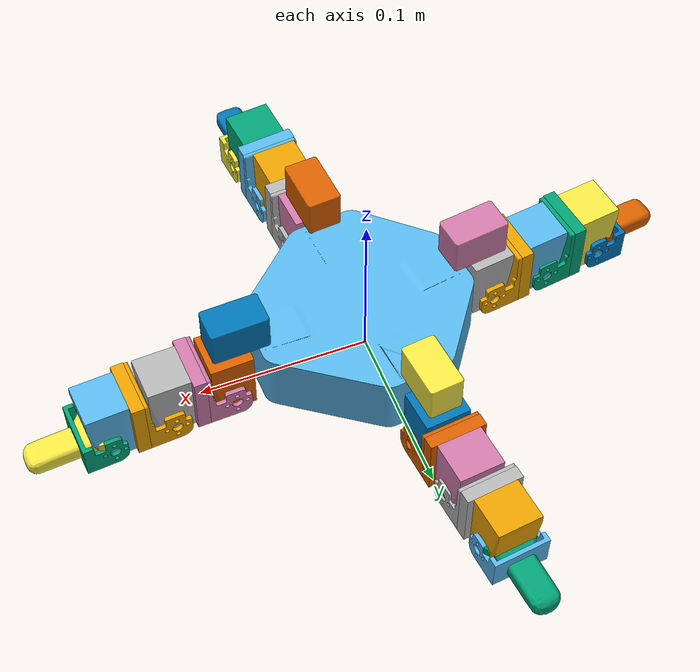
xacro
<?xml version="1.0" encoding="utf-8"?>
<robot xmlns:xacro="http://www.ros.org/wiki/xacro" name="4fingerhand">
  <xacro:include filename="finger1.urdf.xacro"/>
  <xacro:include filename="finger_ghost.urdf.xacro"/>
  <link name="base_link">
    <inertial>
      <origin xyz="0 0 0" rpy="0 0 0"/>
      <mass value="0.5"/>
      <inertia ixx="0.01" ixy="0" ixz="0" iyy="0.01" iyz="0" izz="0.01"/>
    </inertial>
  </link>
  <link name="palm">
    <visual>
      <origin xyz="0 0 0" rpy="0 0 0"/>
      <geometry>
        <mesh filename="robot_meshes/visual/palm_vis.obj"/>
      </geometry>
    </visual>
    <inertial>
      <origin xyz="0 0 0" rpy="0 0 0"/>
      <mass value="0.2"/>
      <inertia ixx="0.001" ixy="0" ixz="0" iyy="0.001" iyz="0" izz="0.001"/>
    </inertial>
    <collision name="palm_collision_0">
      <geometry>
        <mesh filename="meshes/hand_f1_00_f2_70_f3_440_f4_f5_palm_part0.obj"/>
      </geometry>
    </collision>
  </link>
  <joint name="base_to_palm" type="fixed">
    <parent link="base_link"/>
    <child link="palm"/>
    <origin xyz="0 0 0" rpy="0 0 0"/>
  </joint>

  <xacro:finger1 prefix="f1_" parent="palm">
    <origin xyz="0 0 0" rpy="0 0 0"/>
    </xacro:finger1>

    <xacro:finger1 prefix="f2_" parent="palm">
    <origin xyz="0.007864 -0.005870 0.000640" rpy="0 0 -1.635637547063"/>
    </xacro:finger1>

    <xacro:finger1 prefix="f3_" parent="palm">
    <origin xyz="-0.005349 -0.005679 0.000640" rpy="0 0 3.113781730577"/>
    </xacro:finger1>

    <xacro:finger1 prefix="f4_" parent="palm">
    <origin xyz="-0.001870 0.000045 0.000640" rpy="0 0 1.598367033811"/>
    </xacro:finger1>

    <xacro:finger_ghost prefix="f5_" parent="palm">
    <origin xyz="0 0 0" rpy="0 0 0"/>
    </xacro:finger_ghost>

</robot>

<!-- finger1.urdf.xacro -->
<robot xmlns:xacro="http://www.ros.org/wiki/xacro">
  <xacro:macro name="finger1" params="prefix parent *origin">
    <link name="${prefix}finger_root">
      <inertial>
        <mass value="0.001"/>
        <inertia ixx="0.000001" ixy="0" ixz="0" iyy="0.000001" iyz="0" izz="0.000001"/>
      </inertial>
    </link>
    <joint name="${prefix}root_joint" type="fixed">
      <parent link="${parent}"/>
      <child link="${prefix}finger_root"/>
      <xacro:insert_block name="origin"/>
    </joint>
    <link name="${prefix}finger_palm_servo">
      <visual>
        <geometry>
          <mesh filename="robot_meshes/visual/finger_palm_servo_vis.obj"/>
        </geometry>
      </visual>
      <collision>
        <geometry>
          <mesh filename="robot_meshes/finger_palm_servo_part0.obj"/>
        </geometry>
      </collision>
      <inertial>
        <mass value="0.01"/>
        <inertia ixx="0.00001" ixy="0" ixz="0" iyy="0.00001" iyz="0" izz="0.00001"/>
      </inertial>
    </link>
    <joint name="${prefix}palm_servo_joint" type="fixed">
      <parent link="${prefix}finger_root"/>
      <child link="${prefix}finger_palm_servo"/>
      <origin xyz="0.00000 0.00000 0.00000" rpy="0 0 0"/>
    </joint>
    <link name="${prefix}finger_base">
      <visual>
        <origin xyz="0.01210 -0.07583 -0.03747" rpy="0 0 0"/>
        <geometry>
          <mesh filename="robot_meshes/visual/finger_base_vis.obj"/>
        </geometry>
      </visual>
      <collision>
        <origin xyz="0.01210 -0.07583 -0.03747" rpy="0 0 0"/>
        <geometry>
          <mesh filename="robot_meshes/finger_base_servo_part0.obj"/>
        </geometry>
      </collision>
      <inertial>
        <mass value="0.01"/>
        <inertia ixx="0.00001" ixy="0" ixz="0" iyy="0.00001" iyz="0" izz="0.00001"/>
      </inertial>
    </link>
    <joint name="${prefix}finger_palm_joint" type="revolute">
      <parent link="${prefix}finger_palm_servo"/>
      <child link="${prefix}finger_base"/>
      <origin xyz="-0.01210 0.07583 0.03747" rpy="0 0 0"/>
      <axis xyz="0.00000 0.00000 1.00000"/>
      <limit lower="-0.698" upper="0.698" effort="10" velocity="1.0"/>
      <dynamics damping="1.0"/>
    </joint>
    <link name="${prefix}finger_base_lever">
      <visual>
        <origin xyz="0.00032 -0.07716 -0.00489" rpy="0 0 0"/>
        <geometry>
          <mesh filename="robot_meshes/visual/finger_base_lever_vis.obj"/>
        </geometry>
      </visual>
      <collision>
        <origin xyz="0.00032 -0.07716 -0.00489" rpy="0 0 0"/>
        <geometry>
          <mesh filename="robot_meshes/finger_base_lever_part0.obj"/>
        </geometry>
      </collision>
      <collision>
        <origin xyz="0.00032 -0.07716 -0.00489" rpy="0 0 0"/>
        <geometry>
          <mesh filename="robot_meshes/finger_base_lever_part1.obj"/>
        </geometry>
      </collision>
      <collision>
        <origin xyz="0.00032 -0.07716 -0.00489" rpy="0 0 0"/>
        <geometry>
          <mesh filename="robot_meshes/finger_base_lever_part2.obj"/>
        </geometry>
      </collision>
      <visual>
        <origin xyz="0.00032 -0.07716 -0.00489" rpy="0 0 0"/>
        <geometry>
          <mesh filename="robot_meshes/visual/finger_grammar1_vis.obj"/>
        </geometry>
      </visual>
      <collision>
        <origin xyz="0.00032 -0.07716 -0.00489" rpy="0 0 0"/>
        <geometry>
          <mesh filename="robot_meshes/finger_grammar1_part0.obj"/>
        </geometry>
      </collision>
      <inertial>
        <mass value="0.01500"/>
        <inertia ixx="0.00001500" ixy="0" ixz="0" iyy="0.00001500" iyz="0" izz="0.00001500"/>
      </inertial>
    </link>
    <joint name="${prefix}finger_base_joint" type="revolute">
      <parent link="${prefix}finger_base"/>
      <child link="${prefix}finger_base_lever"/>
      <origin xyz="0.01178 0.00133 -0.03258" rpy="0 0 0"/>
      <axis xyz="-0.99238 -0.12319 0.00000"/>
      <limit lower="0.0" upper="1.5708" effort="10" velocity="1.0"/>
      <dynamics damping="1.0"/>
    </joint>
    <link name="${prefix}finger_middle">
      <visual>
        <origin xyz="0.00032 -0.07716 -0.00489" rpy="0 0 0"/>
        <geometry>
          <mesh filename="robot_meshes/visual/finger_middle_vis.obj"/>
        </geometry>
      </visual>
      <collision>
        <origin xyz="0.00032 -0.07716 -0.00489" rpy="0 0 0"/>
        <geometry>
          <mesh filename="robot_meshes/finger_middle_servo_part0.obj"/>
        </geometry>
      </collision>
      <inertial>
        <mass value="0.01"/>
        <inertia ixx="0.00001" ixy="0" ixz="0" iyy="0.00001" iyz="0" izz="0.00001"/>
      </inertial>
    </link>
    <joint name="${prefix}middle_joint" type="fixed">
      <parent link="${prefix}finger_base_lever"/>
      <child link="${prefix}finger_middle"/>
      <origin xyz="0.00000 0.00000 0.00000" rpy="0 0 0"/>
    </joint>
    <link name="${prefix}finger_middle_lever">
      <visual>
        <origin xyz="0.00696 -0.11319 -0.00376" rpy="0 0 0"/>
        <geometry>
          <mesh filename="robot_meshes/visual/finger_middle_lever_vis.obj"/>
        </geometry>
      </visual>
      <collision>
        <origin xyz="0.00696 -0.11319 -0.00376" rpy="0 0 0"/>
        <geometry>
          <mesh filename="robot_meshes/finger_middle_lever_part0.obj"/>
        </geometry>
      </collision>
      <collision>
        <origin xyz="0.00696 -0.11319 -0.00376" rpy="0 0 0"/>
        <geometry>
          <mesh filename="robot_meshes/finger_middle_lever_part1.obj"/>
        </geometry>
      </collision>
      <collision>
        <origin xyz="0.00696 -0.11319 -0.00376" rpy="0 0 0"/>
        <geometry>
          <mesh filename="robot_meshes/finger_middle_lever_part2.obj"/>
        </geometry>
      </collision>
      <visual>
        <origin xyz="0.00696 -0.11319 -0.00376" rpy="0 0 0"/>
        <geometry>
          <mesh filename="robot_meshes/visual/finger_grammar2_vis.obj"/>
        </geometry>
      </visual>
      <collision>
        <origin xyz="0.00696 -0.11319 -0.00376" rpy="0 0 0"/>
        <geometry>
          <mesh filename="robot_meshes/finger_grammar2_part0.obj"/>
        </geometry>
      </collision>
      <inertial>
        <mass value="0.01500"/>
        <inertia ixx="0.00001500" ixy="0" ixz="0" iyy="0.00001500" iyz="0" izz="0.00001500"/>
      </inertial>
    </link>
    <joint name="${prefix}finger_middle_joint" type="revolute">
      <parent link="${prefix}finger_middle"/>
      <child link="${prefix}finger_middle_lever"/>
      <origin xyz="-0.00664 0.03603 -0.00113" rpy="0 0 0"/>
      <axis xyz="-0.99236 -0.12337 0.00000"/>
      <limit lower="0.0" upper="1.5708" effort="10" velocity="1.0"/>
      <dynamics damping="1.0"/>
    </joint>
    <link name="${prefix}finger_end">
      <visual>
        <origin xyz="0.00696 -0.11319 -0.00376" rpy="0 0 0"/>
        <geometry>
          <mesh filename="robot_meshes/visual/finger_end_vis.obj"/>
        </geometry>
      </visual>
      <collision>
        <origin xyz="0.00696 -0.11319 -0.00376" rpy="0 0 0"/>
        <geometry>
          <mesh filename="robot_meshes/finger_end_servo_part0.obj"/>
        </geometry>
      </collision>
      <inertial>
        <mass value="0.01"/>
        <inertia ixx="0.00001" ixy="0" ixz="0" iyy="0.00001" iyz="0" izz="0.00001"/>
      </inertial>
    </link>
    <joint name="${prefix}end_joint" type="fixed">
      <parent link="${prefix}finger_middle_lever"/>
      <child link="${prefix}finger_end"/>
      <origin xyz="0.00000 0.00000 0.00000" rpy="0 0 0"/>
    </joint>
    <link name="${prefix}finger_end_lever">
      <visual>
        <origin xyz="0.00915 -0.14975 -0.00211" rpy="0 0 0"/>
        <geometry>
          <mesh filename="robot_meshes/visual/finger_end_lever_vis.obj"/>
        </geometry>
      </visual>
      <collision>
        <origin xyz="0.00915 -0.14975 -0.00211" rpy="0 0 0"/>
        <geometry>
          <mesh filename="robot_meshes/finger_end_lever_part0.obj"/>
        </geometry>
      </collision>
      <collision>
        <origin xyz="0.00915 -0.14975 -0.00211" rpy="0 0 0"/>
        <geometry>
          <mesh filename="robot_meshes/finger_end_lever_part1.obj"/>
        </geometry>
      </collision>
      <collision>
        <origin xyz="0.00915 -0.14975 -0.00211" rpy="0 0 0"/>
        <geometry>
          <mesh filename="robot_meshes/finger_end_lever_part2.obj"/>
        </geometry>
      </collision>
      <inertial>
        <mass value="0.01"/>
        <inertia ixx="0.00001" ixy="0" ixz="0" iyy="0.00001" iyz="0" izz="0.00001"/>
      </inertial>
    </link>
    <joint name="${prefix}finger_end_joint" type="revolute">
      <parent link="${prefix}finger_end"/>
      <child link="${prefix}finger_end_lever"/>
      <origin xyz="-0.00219 0.03656 -0.00165" rpy="0 0 0"/>
      <axis xyz="-0.99236 -0.12338 0.00000"/>
      <limit lower="0.0" upper="1.5708" effort="10" velocity="1.0"/>
      <dynamics damping="1.0"/>
    </joint>
    <link name="${prefix}finger_tip">
      <visual>
        <origin xyz="0.00915 -0.14975 -0.00211" rpy="0 0 0"/>
        <geometry>
          <mesh filename="robot_meshes/visual/finger_tip_thinner_vis.obj"/>
        </geometry>
      </visual>
      <collision>
        <origin xyz="0.00915 -0.14975 -0.00211" rpy="0 0 0"/>
        <geometry>
          <mesh filename="robot_meshes/finger_tip_thinner_part0.obj"/>
        </geometry>
      </collision>
      <collision>
        <origin xyz="0.00915 -0.14975 -0.00211" rpy="0 0 0"/>
        <geometry>
          <mesh filename="robot_meshes/finger_tip_thinner_part1.obj"/>
        </geometry>
      </collision>
      <inertial>
        <mass value="0.01"/>
        <inertia ixx="0.00001" ixy="0" ixz="0" iyy="0.00001" iyz="0" izz="0.00001"/>
      </inertial>
    </link>
    <joint name="${prefix}tip_joint" type="fixed">
      <parent link="${prefix}finger_end_lever"/>
      <child link="${prefix}finger_tip"/>
      <origin xyz="0.00000 0.00000 0.00000" rpy="0 0 0"/>
    </joint>
  </xacro:macro>
</robot>

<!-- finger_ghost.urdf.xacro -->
<robot xmlns:xacro="http://www.ros.org/wiki/xacro">
  <xacro:macro name="finger_ghost" params="prefix parent *origin">
    <link name="${prefix}finger_root">
      <inertial>
        <mass value="0.001"/>
        <inertia ixx="0.000001" ixy="0" ixz="0" iyy="0.000001" iyz="0" izz="0.000001"/>
      </inertial>
    </link>
    <joint name="${prefix}root_joint" type="fixed">
      <parent link="${parent}"/>
      <child link="${prefix}finger_root"/>
      <xacro:insert_block name="origin"/>
    </joint>
    <link name="${prefix}finger_palm_servo">
      <inertial>
        <mass value="1e-09"/>
        <inertia ixx="1e-12" ixy="0" ixz="0" iyy="1e-12" iyz="0" izz="1e-12"/>
      </inertial>
    </link>
    <joint name="${prefix}palm_servo_joint" type="fixed">
      <parent link="${prefix}finger_root"/>
      <child link="${prefix}finger_palm_servo"/>
      <origin xyz="0.00000 0.00000 0.00000" rpy="0 0 0"/>
    </joint>
    <link name="${prefix}finger_base">
      <inertial>
        <mass value="1e-09"/>
        <inertia ixx="1e-12" ixy="0" ixz="0" iyy="1e-12" iyz="0" izz="1e-12"/>
      </inertial>
    </link>
    <joint name="${prefix}finger_palm_joint" type="revolute">
      <parent link="${prefix}finger_palm_servo"/>
      <child link="${prefix}finger_base"/>
      <origin xyz="0.01863 0.06172 -0.02800" rpy="0 0 0"/>
      <axis xyz="0.00000 0.00000 1.00000"/>
      <limit lower="0.0" upper="1e-08" effort="10" velocity="1.0"/>
      <dynamics damping="1.0"/>
    </joint>
    <link name="${prefix}finger_base_lever">
      <inertial>
        <mass value="1e-09"/>
        <inertia ixx="1e-12" ixy="0" ixz="0" iyy="1e-12" iyz="0" izz="1e-12"/>
      </inertial>
    </link>
    <joint name="${prefix}finger_base_joint" type="revolute">
      <parent link="${prefix}finger_base"/>
      <child link="${prefix}finger_base_lever"/>
      <origin xyz="0.01709 0.00043 -0.00464" rpy="0 0 0"/>
      <axis xyz="-0.99942 -0.03408 0.00000"/>
      <limit lower="-0.001" upper="0.001" effort="10" velocity="1.0"/>
      <dynamics damping="10.0" friction="1.0"/>
    </joint>
    <link name="${prefix}finger_middle">
      <inertial>
        <mass value="1e-09"/>
        <inertia ixx="1e-12" ixy="0" ixz="0" iyy="1e-12" iyz="0" izz="1e-12"/>
      </inertial>
    </link>
    <joint name="${prefix}middle_joint" type="fixed">
      <parent link="${prefix}finger_base_lever"/>
      <child link="${prefix}finger_middle"/>
      <origin xyz="0.00000 0.00000 0.00000" rpy="0 0 0"/>
    </joint>
    <link name="${prefix}finger_middle_lever">
      <inertial>
        <mass value="1e-09"/>
        <inertia ixx="1e-12" ixy="0" ixz="0" iyy="1e-12" iyz="0" izz="1e-12"/>
      </inertial>
    </link>
    <joint name="${prefix}finger_middle_joint" type="revolute">
      <parent link="${prefix}finger_middle"/>
      <child link="${prefix}finger_middle_lever"/>
      <origin xyz="-0.00115 0.03147 -0.00114" rpy="0 0 0"/>
      <axis xyz="-0.99942 -0.03408 0.00000"/>
      <limit lower="-0.001" upper="0.001" effort="10" velocity="1.0"/>
      <dynamics damping="10.0" friction="1.0"/>
    </joint>
    <link name="${prefix}finger_end">
      <inertial>
        <mass value="1e-09"/>
        <inertia ixx="1e-12" ixy="0" ixz="0" iyy="1e-12" iyz="0" izz="1e-12"/>
      </inertial>
    </link>
    <joint name="${prefix}end_joint" type="fixed">
      <parent link="${prefix}finger_middle_lever"/>
      <child link="${prefix}finger_end"/>
      <origin xyz="0.00000 0.00000 0.00000" rpy="0 0 0"/>
    </joint>
    <link name="${prefix}finger_end_lever">
      <inertial>
        <mass value="1e-09"/>
        <inertia ixx="1e-12" ixy="0" ixz="0" iyy="1e-12" iyz="0" izz="1e-12"/>
      </inertial>
    </link>
    <joint name="${prefix}finger_end_joint" type="revolute">
      <parent link="${prefix}finger_end"/>
      <child link="${prefix}finger_end_lever"/>
      <origin xyz="-0.00104 0.03148 -0.00100" rpy="0 0 0"/>
      <axis xyz="-0.99942 -0.03409 0.00000"/>
      <limit lower="-0.001" upper="0.001" effort="10" velocity="1.0"/>
      <dynamics damping="10.0" friction="1.0"/>
    </joint>
    <link name="${prefix}finger_tip">
      <inertial>
        <mass value="1e-09"/>
        <inertia ixx="1e-12" ixy="0" ixz="0" iyy="1e-12" iyz="0" izz="1e-12"/>
      </inertial>
    </link>
    <joint name="${prefix}tip_joint" type="fixed">
      <parent link="${prefix}finger_end_lever"/>
      <child link="${prefix}finger_tip"/>
      <origin xyz="0.00000 0.00000 0.00000" rpy="0 0 0"/>
    </joint>
  </xacro:macro>
</robot>
